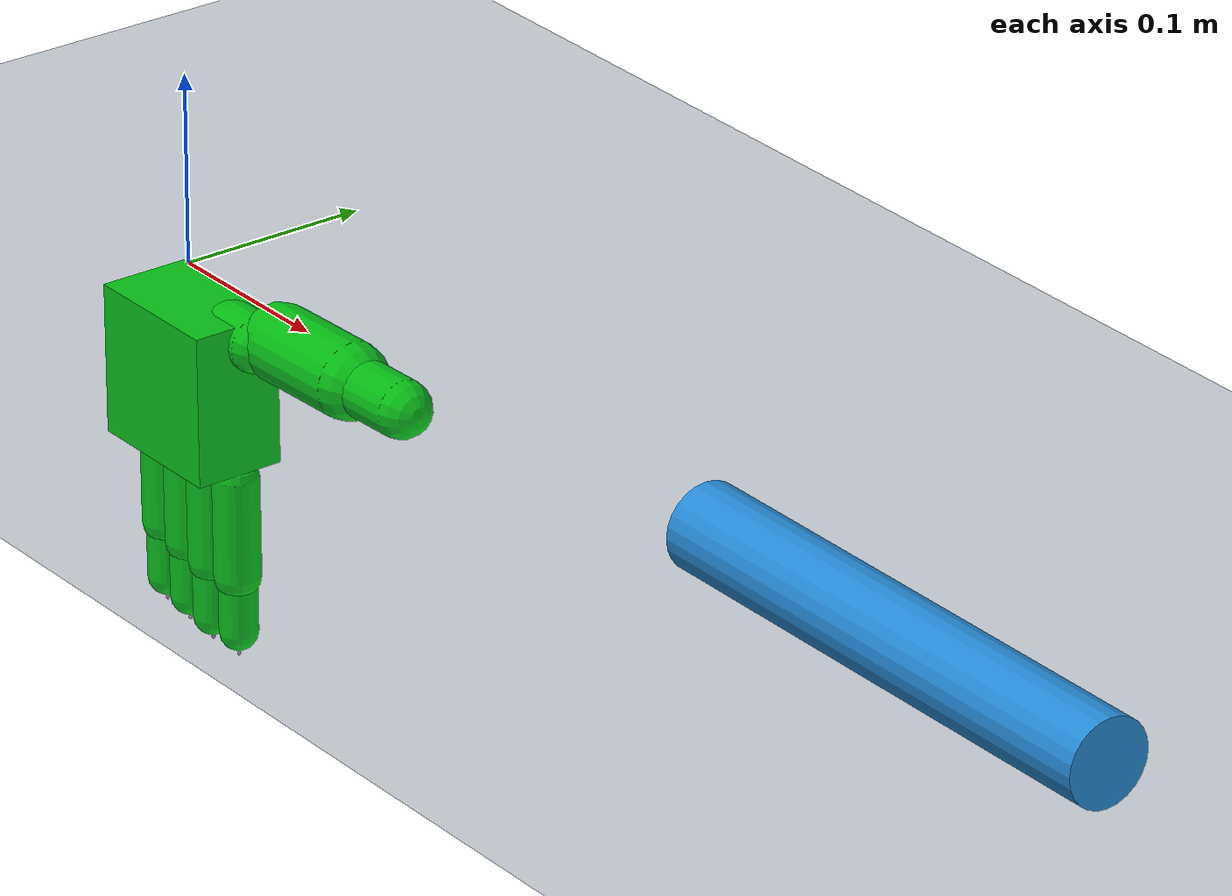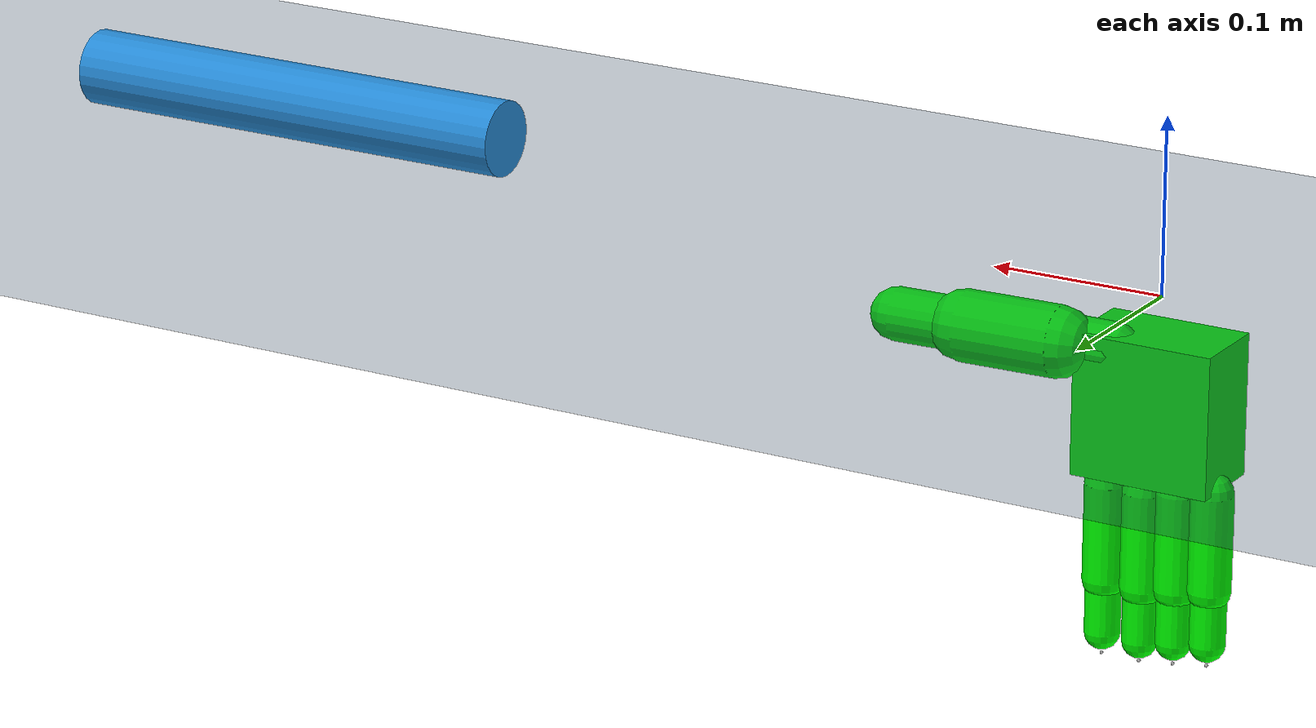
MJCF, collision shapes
<mujoco model="xhand_spider_bottle">
  <option timestep="0.002" integrator="implicitfast" cone="elliptic" impratio="10"/>

  <default>
    <geom contype="0" conaffinity="0" condim="4"/>
  </default>

  <asset>
    <texture type="skybox" builtin="gradient" rgb1="0.3 0.5 0.7" rgb2="0 0 0" width="512" height="3072"/>
    <texture type="2d" name="groundplane" builtin="checker" mark="edge" rgb1="0.2 0.3 0.4" rgb2="0.1 0.2 0.3"
      markrgb="0.8 0.8 0.8" width="300" height="300"/>
    <material name="groundplane" texture="groundplane" texuniform="true" texrepeat="5 5" reflectance="0.1"/>
    <material name="bottle_mat" rgba="0.15 0.55 0.85 0.95" specular="0.4" shininess="0.3"/>
  </asset>

  <include file="../xhand_spider/right_hand.xml"/>

  <worldbody>
    <light pos="0.55 0 2.0" dir="0 0 -1" directional="true"/>
    <geom name="floor" type="plane" size="0 0 0.05" material="groundplane"
          contype="1" conaffinity="1" friction="1.0 0.02 0.002"/>
    <!-- Horizontal bottle: cylinder axis along +X -->
    <body name="bottle" pos="0.55 0 0.022" quat="0.707107 0 0.707107 0">
      <freejoint name="bottle_free"/>
      <inertial pos="0 0 0" mass="0.15" diaginertia="0.00015 0.00015 0.00002"/>
      <geom name="bottle_geom" type="cylinder" size="0.022 0.14" material="bottle_mat"
            contype="1" conaffinity="1" friction="1.2 0.03 0.003"
            solimp="0.9 0.95 0.001" solref="0.02 1"/>
    </body>
    <camera name="grasp_cam" pos="0.25 -0.65 0.35" xyaxes="0.85 0.5 0 -0.15 0.3 0.94"/>
  </worldbody>

  <contact>
    <pair geom1="collision_hand_right_palm_0" geom2="collision_hand_right_thumb_2" friction="1 1 0.1 0 0" condim="4"/>
    <pair geom1="collision_hand_right_palm_0" geom2="collision_hand_right_thumb_1" friction="1 1 0.1 0 0" condim="4"/>
    <pair geom1="collision_hand_right_palm_0" geom2="collision_hand_right_thumb_0" friction="1 1 0.1 0 0" condim="4"/>
    <pair geom1="collision_hand_right_palm_0" geom2="collision_hand_right_index_1" friction="1 1 0.1 0 0" condim="4"/>
    <pair geom1="collision_hand_right_palm_0" geom2="collision_hand_right_index_0" friction="1 1 0.1 0 0" condim="4"/>
    <pair geom1="collision_hand_right_palm_0" geom2="collision_hand_right_middle_1" friction="1 1 0.1 0 0" condim="4"/>
    <pair geom1="collision_hand_right_palm_0" geom2="collision_hand_right_middle_0" friction="1 1 0.1 0 0" condim="4"/>
    <pair geom1="collision_hand_right_palm_0" geom2="collision_hand_right_ring_1" friction="1 1 0.1 0 0" condim="4"/>
    <pair geom1="collision_hand_right_palm_0" geom2="collision_hand_right_ring_0" friction="1 1 0.1 0 0" condim="4"/>
    <pair geom1="collision_hand_right_palm_0" geom2="collision_hand_right_pinky_1" friction="1 1 0.1 0 0" condim="4"/>
    <pair geom1="collision_hand_right_palm_0" geom2="collision_hand_right_pinky_0" friction="1 1 0.1 0 0" condim="4"/>
    <pair geom1="collision_hand_right_thumb_2" geom2="collision_hand_right_index_1" friction="1 1 0.1 0 0" condim="4"/>
    <pair geom1="collision_hand_right_thumb_2" geom2="collision_hand_right_index_0" friction="1 1 0.1 0 0" condim="4"/>
    <pair geom1="collision_hand_right_thumb_2" geom2="collision_hand_right_middle_1" friction="1 1 0.1 0 0" condim="4"/>
    <pair geom1="collision_hand_right_thumb_2" geom2="collision_hand_right_middle_0" friction="1 1 0.1 0 0" condim="4"/>
    <pair geom1="collision_hand_right_thumb_2" geom2="collision_hand_right_ring_1" friction="1 1 0.1 0 0" condim="4"/>
    <pair geom1="collision_hand_right_thumb_2" geom2="collision_hand_right_ring_0" friction="1 1 0.1 0 0" condim="4"/>
    <pair geom1="collision_hand_right_thumb_2" geom2="collision_hand_right_pinky_1" friction="1 1 0.1 0 0" condim="4"/>
    <pair geom1="collision_hand_right_thumb_2" geom2="collision_hand_right_pinky_0" friction="1 1 0.1 0 0" condim="4"/>
    <pair geom1="collision_hand_right_thumb_1" geom2="collision_hand_right_index_1" friction="1 1 0.1 0 0" condim="4"/>
    <pair geom1="collision_hand_right_thumb_1" geom2="collision_hand_right_index_0" friction="1 1 0.1 0 0" condim="4"/>
    <pair geom1="collision_hand_right_thumb_1" geom2="collision_hand_right_middle_1" friction="1 1 0.1 0 0" condim="4"/>
    <pair geom1="collision_hand_right_thumb_1" geom2="collision_hand_right_middle_0" friction="1 1 0.1 0 0" condim="4"/>
    <pair geom1="collision_hand_right_thumb_1" geom2="collision_hand_right_ring_1" friction="1 1 0.1 0 0" condim="4"/>
    <pair geom1="collision_hand_right_thumb_1" geom2="collision_hand_right_ring_0" friction="1 1 0.1 0 0" condim="4"/>
    <pair geom1="collision_hand_right_thumb_1" geom2="collision_hand_right_pinky_1" friction="1 1 0.1 0 0" condim="4"/>
    <pair geom1="collision_hand_right_thumb_1" geom2="collision_hand_right_pinky_0" friction="1 1 0.1 0 0" condim="4"/>
    <pair geom1="collision_hand_right_thumb_0" geom2="collision_hand_right_index_1" friction="1 1 0.1 0 0" condim="4"/>
    <pair geom1="collision_hand_right_thumb_0" geom2="collision_hand_right_index_0" friction="1 1 0.1 0 0" condim="4"/>
    <pair geom1="collision_hand_right_thumb_0" geom2="collision_hand_right_middle_1" friction="1 1 0.1 0 0" condim="4"/>
    <pair geom1="collision_hand_right_thumb_0" geom2="collision_hand_right_middle_0" friction="1 1 0.1 0 0" condim="4"/>
    <pair geom1="collision_hand_right_thumb_0" geom2="collision_hand_right_ring_1" friction="1 1 0.1 0 0" condim="4"/>
    <pair geom1="collision_hand_right_thumb_0" geom2="collision_hand_right_ring_0" friction="1 1 0.1 0 0" condim="4"/>
    <pair geom1="collision_hand_right_thumb_0" geom2="collision_hand_right_pinky_1" friction="1 1 0.1 0 0" condim="4"/>
    <pair geom1="collision_hand_right_thumb_0" geom2="collision_hand_right_pinky_0" friction="1 1 0.1 0 0" condim="4"/>
    <pair geom1="floor" geom2="bottle_geom" friction="1 1 0.1 0 0" condim="4"/>
    <pair geom1="collision_hand_right_palm_0" geom2="bottle_geom" friction="1.2 1.2 0.1 0 0" condim="4"/>
    <pair geom1="collision_hand_right_thumb_2" geom2="bottle_geom" friction="1.2 1.2 0.1 0 0" condim="4"/>
    <pair geom1="collision_hand_right_thumb_1" geom2="bottle_geom" friction="1.2 1.2 0.1 0 0" condim="4"/>
    <pair geom1="collision_hand_right_thumb_0" geom2="bottle_geom" friction="1.2 1.2 0.1 0 0" condim="4"/>
    <pair geom1="collision_hand_right_index_1" geom2="bottle_geom" friction="1.2 1.2 0.1 0 0" condim="4"/>
    <pair geom1="collision_hand_right_index_0" geom2="bottle_geom" friction="1.2 1.2 0.1 0 0" condim="4"/>
    <pair geom1="collision_hand_right_middle_1" geom2="bottle_geom" friction="1.2 1.2 0.1 0 0" condim="4"/>
    <pair geom1="collision_hand_right_middle_0" geom2="bottle_geom" friction="1.2 1.2 0.1 0 0" condim="4"/>
    <pair geom1="collision_hand_right_ring_1" geom2="bottle_geom" friction="1.2 1.2 0.1 0 0" condim="4"/>
    <pair geom1="collision_hand_right_ring_0" geom2="bottle_geom" friction="1.2 1.2 0.1 0 0" condim="4"/>
    <pair geom1="collision_hand_right_pinky_1" geom2="bottle_geom" friction="1.2 1.2 0.1 0 0" condim="4"/>
    <pair geom1="collision_hand_right_pinky_0" geom2="bottle_geom" friction="1.2 1.2 0.1 0 0" condim="4"/>
  </contact>

  <keyframe>
    <key name="home" qpos="0.55 -0.08 0.06 0.0 -1.2 0.0 0 0 0 0 0 0 0 0 0 0 0 0 0.55 0 0.022 0.707107 0 0.707107 0"
         ctrl="0.55 -0.08 0.06 0.0 -1.2 0.0 0 0 0 0 0 0 0 0 0 0 0 0"/>
    <key name="grasp_lateral" qpos="0.55 -0.08 0.06 0.0 -1.2 0.0 1.0000 0.4000 0.9000 0.0000 0.5000 0.3500 0.5000 0.3500 0.5000 0.3500 0.4500 0.3000 0.55 0 0.022 0.707107 0 0.707107 0"
         ctrl="0.55 -0.08 0.06 0.0 -1.2 0.0 1.0000 0.4000 0.9000 0.0000 0.5000 0.3500 0.5000 0.3500 0.5000 0.3500 0.4500 0.3000"/>
  </keyframe>
</mujoco>

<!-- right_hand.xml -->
<mujoco model="xhand_right">
  <compiler angle="radian" meshdir="meshes/" />

  <default>
    <!-- disable all contacts and use explicit collision pairs -->
    <geom density="800" condim="1" contype="0" conaffinity="0" />
    <!-- with this setting, the response time is around 1s -->
    <position kp="300" dampratio="1.0" inheritrange="1" />
    <joint damping="0.0" armature="1.0" frictionloss="0.0" />
    <site size="0.005" type="sphere" rgba="1 0 0 1" group="3" />
  </default>

  <asset>
    <texture type="skybox" builtin="gradient" rgb1="1.0 1.0 1.0" rgb2="1.0 1.0 1.0" width="512"
      height="3072" />
    <texture type="2d" name="right_groundplane" builtin="checker" mark="edge" rgb1="0.2 0.3 0.4"
      rgb2="0.1 0.2 0.3"
      markrgb="0.8 0.8 0.8" width="300" height="300" />
    <material name="right_groundplane" texture="right_groundplane" texuniform="true"
      texrepeat="5 5"
      reflectance="0.2" />
    <mesh name="right_hand_link" content_type="model/stl" file="right_hand_link.STL" />
    <mesh name="right_hand_thumb_bend_link" content_type="model/stl"
      file="right_hand_thumb_bend_link.STL" />
    <mesh name="right_hand_thumb_rota_link1" content_type="model/stl"
      file="right_hand_thumb_rota_link1.STL" />
    <mesh name="right_hand_thumb_rota_link2" content_type="model/stl"
      file="right_hand_thumb_rota_link2.STL" />
    <mesh name="right_hand_index_bend_link" content_type="model/stl"
      file="right_hand_index_bend_link.STL" />
    <mesh name="right_hand_index_rota_link1" content_type="model/stl"
      file="right_hand_index_rota_link1.STL" />
    <mesh name="right_hand_index_rota_link2" content_type="model/stl"
      file="right_hand_index_rota_link2.STL" />
    <mesh name="right_hand_mid_link1" content_type="model/stl" file="right_hand_mid_link1.STL" />
    <mesh name="right_hand_mid_link2" content_type="model/stl" file="right_hand_mid_link2.STL" />
    <mesh name="right_hand_ring_link1" content_type="model/stl" file="right_hand_ring_link1.STL" />
    <mesh name="right_hand_ring_link2" content_type="model/stl" file="right_hand_ring_link2.STL" />
    <mesh name="right_hand_pinky_link1" content_type="model/stl" file="right_hand_pinky_link1.STL" />
    <mesh name="right_hand_pinky_link2" content_type="model/stl" file="right_hand_pinky_link2.STL" />
  </asset>

  <worldbody>
    <body name="R_forearm_ty_link">
      <camera name="right_track" pos="-0.868 -0.348 -0.175"
        xyaxes="-0.037 0.999 -0.000 -0.011 -0.000 1.000" />
      <inertial pos="0 0 0" mass="0.1" diaginertia="0.01 0.01 0.01" />
      <joint name="R_forearm_tx_link_joint" pos="0 0 0" axis="1 0 0" type="slide" range="-5 5" />
      <body name="R_forearm_tz_link">
        <inertial pos="0 0 0" mass="0.1" diaginertia="0.01 0.01 0.01" />
        <joint name="R_forearm_ty_link_joint" pos="0 0 0" axis="0 1 0" type="slide" range="-5 5" />
        <body name="R_forearm_roll_link">
          <inertial pos="0 0 0" mass="0.1" diaginertia="0.01 0.01 0.01" />
          <joint name="R_forearm_tz_link_joint" pos="0 0 0" axis="0 0 1" type="slide" range="-5 5" />
          <body name="R_forearm_pitch_link">
            <inertial pos="0 0 0" mass="0.1" diaginertia="0.01 0.01 0.01" />
            <joint name="R_forearm_roll_link_joint" pos="0 0 0" axis="0 0 1" range="-6.2 6.2" />
            <body name="R_forearm_yaw_link">
              <inertial pos="0 0 0" mass="0.1" diaginertia="0.01 0.01 0.01" />
              <joint name="R_forearm_pitch_link_joint" pos="0 0 0" axis="1 0 0" range="-6.2 6.2" />
              <body name="right_hand_link">
                <inertial pos="-0.0071397 0.00342244 -0.0584807"
                  quat="0.688453 0.098553 0.0886255 0.713068" mass="0.530025"
                  diaginertia="0.00067782 0.000491189 0.000335821" />
                <joint name="R_forearm_yaw_link_joint" pos="0 0 0" axis="0 -1 0" range="-6.2 6.2" />
                <geom name="right_hand_link_visual" type="mesh" contype="0" conaffinity="0"
                  group="1" density="0" rgba="0.792157 0.819608 0.933333 1" mesh="right_hand_link" />
                <geom name="collision_hand_right_palm_0" type="box" size="0.04 0.024 0.04"
                  pos="0 0 -0.06"
                  rgba="0 1 0 1" group="3" />
                <site name="right_palm" pos="0 0 0" type="box" size="0.01 0.02 0.03" quat="0 1 1 0" />
                <body name="right_hand_thumb_bend_link" pos="0.0228 0.0095 -0.0305">
                  <inertial pos="0.0145291 -0.000901303 -0.000127926"
                    quat="0.0288921 0.68936 0.0166971 0.72365" mass="0.00985529"
                    diaginertia="1.30647e-06 1.29142e-06 5.40953e-07" />
                  <joint name="right_hand_thumb_bend_joint" pos="0 0 0" axis="0 0 1" range="0 1.83" />
                  <geom name="right_thumb_bend_visual" type="mesh" contype="0" conaffinity="0"
                    group="1" density="0" rgba="0.890196 0.890196 0.913725 1"
                    mesh="right_hand_thumb_bend_link" />
                  <geom name="collision_hand_right_thumb_2" type="capsule" size="0.015"
                    fromto="0 0 0 0.02 0 0"
                    rgba="0 1 0 1" group="3" />
                  <body name="right_hand_thumb_rota_link1" pos="0.028599 0.0083177 0.00178"
                    quat="0.99124 0.130499 0.00265603 0.0201745">
                    <inertial pos="0.0279237 -0.000127603 -0.000272577"
                      quat="-0.0989965 0.703671 0.0850598 0.698435" mass="0.153265"
                      diaginertia="5.62327e-05 4.89801e-05 2.23924e-05" />
                    <joint name="right_hand_thumb_rota_joint1" pos="0 0 0" axis="0 1 0"
                      range="-1.05 1.57" />
                    <geom name="right_thumb_rota1_visual" type="mesh" contype="0" conaffinity="0"
                      group="1" density="0" rgba="1 1 1 1" mesh="right_hand_thumb_rota_link1" />
                    <geom name="collision_hand_right_thumb_1" type="capsule" size="0.02"
                      fromto="0 0 0 0.055 0 0" rgba="0 1 0 1"
                      group="3" />
                    <body name="right_hand_thumb_rota_link2" pos="0.0553 0 0">
                      <inertial pos="0.0224697 -0.000691342 0.00302232"
                        quat="-0.0604029 0.715612 0.0198067 0.695599" mass="0.0374004"
                        diaginertia="9.5465e-06 8.27017e-06 3.92137e-06" />
                      <joint name="right_hand_thumb_rota_joint2" pos="0 0 0" axis="0 1 0"
                        range="-0.175 1.83" />
                      <geom name="right_thumb_rota2_visual" type="mesh" contype="0" conaffinity="0"
                        group="1" density="0" rgba="0.792157 0.819608 0.933333 1"
                        mesh="right_hand_thumb_rota_link2" />
                      <geom name="collision_hand_right_thumb_0" type="capsule" size="0.015"
                        fromto="0 0 0 0.04 0 0"
                        rgba="0 1 0 1"
                        group="3" />

                      <geom size="0.001" pos="0.0504025 0 0" contype="0" conaffinity="0" group="1"
                        density="0" rgba="0.698039 0.698039 0.698039 1" />
                      <site name="right_thumb_tip" pos="0.04 0 -0.012" />
                      <site name="track_hand_right_thumb_tip" pos="0.04 0 -0.012" />
                      <site name="trace_hand_right_thumb_tip" pos="0.04 0 -0.012" />
                    </body>
                  </body>
                </body>
                <body name="right_hand_index_bend_link" pos="0.0265 0.0065 -0.0899">
                  <inertial pos="8.08449e-05 0.000675884 0.00420851"
                    quat="0.999802 -0.0189928 -0.00582288 0.000998418" mass="0.0677836"
                    diaginertia="2.16592e-05 2.09943e-05 3.36803e-06" />
                  <joint name="right_hand_index_bend_joint" pos="0 0 0" axis="0 1 0"
                    range="-0.175 0.175" />
                  <geom name="right_index_bend_visual" type="mesh" contype="0" conaffinity="0"
                    group="1" density="0" rgba="0.439216 0.439216 0.439216 1"
                    mesh="right_hand_index_bend_link" />
                  <body name="right_hand_index_rota_link1" pos="0 0 -0.0178">
                    <inertial pos="-0.00013977 -0.000800517 -0.0356039"
                      quat="0.999865 0.00809183 -0.0131314 0.00566198" mass="0.0630216"
                      diaginertia="2.05301e-05 1.92461e-05 4.135e-06" />
                    <joint name="right_hand_index_joint1" pos="0 0 0" axis="1 0 0" range="0 1.92"
                    />
                    <geom name="right_index_rota1_visual" type="mesh" contype="0" conaffinity="0"
                      group="1" density="0" rgba="1 1 1 1" mesh="right_hand_index_rota_link1" />
                    <geom name="collision_hand_right_index_1" type="capsule" size="0.012"
                      fromto="0 0 0 0 0 -0.055" rgba="0 1 0 1" group="3" />
                    <body name="right_hand_index_rota_link2" pos="0 0 -0.0558">
                      <inertial pos="-0.000338569 1.93676e-05 -0.0231329"
                        quat="0.935384 0.00588977 -0.0260883 0.35262" mass="0.0179923"
                        diaginertia="3.02409e-06 3.01968e-06 9.82703e-07" />
                      <joint name="right_hand_index_joint2" pos="0 0 0" axis="1 0 0" range="0 1.92"
                      />
                      <geom name="right_index_rota2_visual" type="mesh" contype="0" conaffinity="0"
                        group="1" density="0" rgba="0.866667 0.866667 0.890196 1"
                        mesh="right_hand_index_rota_link2" />
                      <geom name="collision_hand_right_index_0" type="capsule" size="0.01"
                        fromto="0 0 0 0 0 -0.03" rgba="0 1 0 1" group="3" />
                      <geom size="0.001" pos="0 0 -0.0425" contype="0" conaffinity="0" group="1"
                        density="0" rgba="0.698039 0.698039 0.698039 1" />
                      <site name="right_index_tip" pos="0 0.004 -0.027" />
                      <site name="track_hand_right_index_tip" pos="0 0.004 -0.027" />
                      <site name="trace_hand_right_index_tip" pos="0 0.004 -0.027" />
                    </body>
                  </body>
                </body>
                <body name="right_hand_mid_link1" pos="0.004 0.0065 -0.1082">
                  <inertial pos="-0.000139769 -0.000800517 -0.0356039"
                    quat="0.999865 0.00809181 -0.0131314 0.00566199" mass="0.0630216"
                    diaginertia="2.05301e-05 1.92461e-05 4.135e-06" />
                  <joint name="right_hand_mid_joint1" pos="0 0 0" axis="1 0 0" range="0 1.92"
                  />
                  <geom name="right_middle_link1_visual" type="mesh" contype="0" conaffinity="0"
                    group="1" density="0" rgba="1 1 1 1" mesh="right_hand_mid_link1" />
                  <geom name="collision_hand_right_middle_1" type="capsule" size="0.012"
                    fromto="0 0 0 0 0 -0.055" rgba="0 1 0 1" group="3" />
                  <body name="right_hand_mid_link2" pos="0 0 -0.0558">
                    <inertial pos="-0.000338569 1.93676e-05 -0.0231329"
                      quat="0.935384 0.00588977 -0.0260883 0.35262" mass="0.0179923"
                      diaginertia="3.02409e-06 3.01968e-06 9.82703e-07" />
                    <joint name="right_hand_mid_joint2" pos="0 0 0" axis="1 0 0" range="0 1.94"
                    />
                    <geom name="right_middle_link2_visual" type="mesh" contype="0" conaffinity="0"
                      group="1" density="0" rgba="0.866667 0.866667 0.890196 1"
                      mesh="right_hand_mid_link2" />
                    <geom name="collision_hand_right_middle_0" type="capsule" size="0.01"
                      fromto="0 0 0 0 0 -0.03" rgba="0 1 0 1" group="3" />
                    <geom size="0.001" pos="0 0 -0.042107" contype="0" conaffinity="0" group="1"
                      density="0" rgba="0.698039 0.698039 0.698039 1" />
                    <site name="right_middle_tip" pos="0 0.004 -0.027" />
                    <site name="track_hand_right_middle_tip" pos="0 0.004 -0.027" />
                    <site name="trace_hand_right_middle_tip" pos="0 0.004 -0.027" />
                  </body>
                </body>
                <body name="right_hand_ring_link1" pos="-0.016 0.0065 -0.1052">
                  <inertial pos="-0.00013977 -0.000800517 -0.0356039"
                    quat="0.999865 0.00809183 -0.0131314 0.00566196" mass="0.0630216"
                    diaginertia="2.05301e-05 1.92461e-05 4.135e-06" />
                  <joint name="right_hand_ring_joint1" pos="0 0 0" axis="1 0 0" range="0 1.92"
                  />
                  <geom name="right_ring_link1_visual" type="mesh" contype="0" conaffinity="0"
                    group="1" density="0" rgba="1 1 1 1" mesh="right_hand_ring_link1" />
                  <geom name="collision_hand_right_ring_1" type="capsule" size="0.012"
                    fromto="0 0 0 0 0 -0.055" rgba="0 1 0 1" group="3" />
                  <body name="right_hand_ring_link2" pos="0 0 -0.0558">
                    <inertial pos="-0.000338573 1.93622e-05 -0.0231328"
                      quat="0.935372 0.00588872 -0.0260882 0.352652" mass="0.0179923"
                      diaginertia="3.02409e-06 3.01968e-06 9.82702e-07" />
                    <joint name="right_hand_ring_joint2" pos="0 0 0" axis="1 0 0" range="0 1.92"
                    />
                    <geom name="right_ring_link2_visual" type="mesh" contype="0" conaffinity="0"
                      group="1" density="0" rgba="0.866667 0.866667 0.890196 1"
                      mesh="right_hand_ring_link2" />
                    <geom name="collision_hand_right_ring_0" type="capsule" size="0.01"
                      fromto="0 0 0 0 0 -0.03" rgba="0 1 0 1" group="3" />
                    <geom size="0.001" pos="0 0 -0.0425" contype="0" conaffinity="0" group="1"
                      density="0" rgba="0.698039 0.698039 0.698039 1" />
                    <site name="right_ring_tip" pos="0 0.004 -0.027" />
                    <site name="track_hand_right_ring_tip" pos="0 0.004 -0.027" />
                    <site name="trace_hand_right_ring_tip" pos="0 0.004 -0.027" />
                  </body>
                </body>
                <body name="right_hand_pinky_link1" pos="-0.036 0.0065 -0.1022">
                  <inertial pos="-0.000139769 -0.000800517 -0.0356039"
                    quat="0.999865 0.00809181 -0.0131314 0.00566204" mass="0.0630216"
                    diaginertia="2.05301e-05 1.92461e-05 4.135e-06" />
                  <joint name="right_hand_pinky_joint1" pos="0 0 0" axis="1 0 0" range="0 1.92"
                  />
                  <geom name="right_pinky_link1_visual" type="mesh" contype="0" conaffinity="0"
                    group="1" density="0" rgba="1 1 1 1" mesh="right_hand_pinky_link1" />
                  <geom name="collision_hand_right_pinky_1" type="capsule" size="0.012"
                    fromto="0 0 0 0 0 -0.055" rgba="0 1 0 1" group="3" />
                  <body name="right_hand_pinky_link2" pos="0 0 -0.0558">
                    <inertial pos="-0.000338569 1.93676e-05 -0.0231329"
                      quat="0.935384 0.00588976 -0.0260883 0.352621" mass="0.0179923"
                      diaginertia="3.02409e-06 3.01968e-06 9.82703e-07" />
                    <joint name="right_hand_pinky_joint2" pos="0 0 0" axis="1 0 0" range="0 1.92"
                    />
                    <geom name="right_pinky_link2_visual" type="mesh" contype="0" conaffinity="0"
                      group="1" density="0" rgba="0.866667 0.866667 0.890196 1"
                      mesh="right_hand_pinky_link2" />
                    <geom name="collision_hand_right_pinky_0" type="capsule" size="0.01"
                      fromto="0 0 0 0 0 -0.03" rgba="0 1 0 1" group="3" />
                    <geom size="0.001" pos="0 0 -0.0425" contype="0" conaffinity="0" group="1"
                      density="0" rgba="0.698039 0.698039 0.698039 1" />
                    <site name="right_pinky_tip" pos="0 0.004 -0.027" />
                    <site name="track_hand_right_pinky_tip" pos="0 0.004 -0.027" />
                    <site name="trace_hand_right_pinky_tip" pos="0 0.004 -0.027" />
                  </body>
                </body>
              </body>
            </body>
          </body>
        </body>
      </body>
    </body>
  </worldbody>

  <actuator>
    <!-- Global position and rotation joints -->
    <position name="R_forearm_tx_position" joint="R_forearm_tx_link_joint" kp="1000" />
    <position name="R_forearm_ty_position" joint="R_forearm_ty_link_joint" kp="1000" />
    <position name="R_forearm_tz_position" joint="R_forearm_tz_link_joint" kp="1000" />
    <position name="R_forearm_roll_position" joint="R_forearm_roll_link_joint" kp="1000" />
    <position name="R_forearm_pitch_position" joint="R_forearm_pitch_link_joint" kp="1000" />
    <position name="R_forearm_yaw_position" joint="R_forearm_yaw_link_joint" kp="1000" />

    <!-- Thumb joints -->
    <position name="right_thumb_bend_position" joint="right_hand_thumb_bend_joint" />
    <position name="right_thumb_rota1_position" joint="right_hand_thumb_rota_joint1" />
    <position name="right_thumb_rota2_position" joint="right_hand_thumb_rota_joint2" />

    <!-- Index joints -->
    <position name="right_index_bend_position" joint="right_hand_index_bend_joint" />
    <position name="right_index_joint1_position" joint="right_hand_index_joint1" />
    <position name="right_index_joint2_position" joint="right_hand_index_joint2" />

    <!-- Middle joints -->
    <position name="right_middle_joint1_position" joint="right_hand_mid_joint1" />
    <position name="right_middle_joint2_position" joint="right_hand_mid_joint2" />

    <!-- Ring joints -->
    <position name="right_ring_joint1_position" joint="right_hand_ring_joint1" />
    <position name="right_ring_joint2_position" joint="right_hand_ring_joint2" />

    <!-- Pinky joints -->
    <position name="right_pinky_joint1_position" joint="right_hand_pinky_joint1" />
    <position name="right_pinky_joint2_position" joint="right_hand_pinky_joint2" />
  </actuator>
</mujoco>
